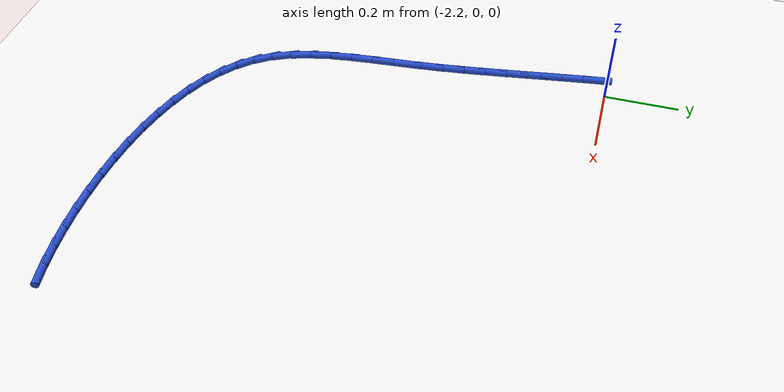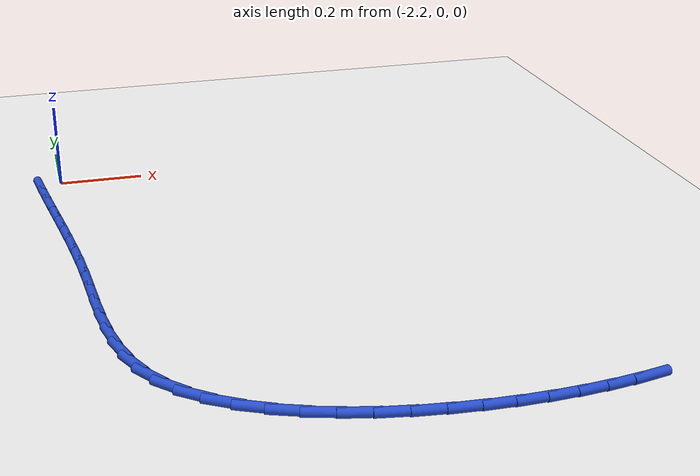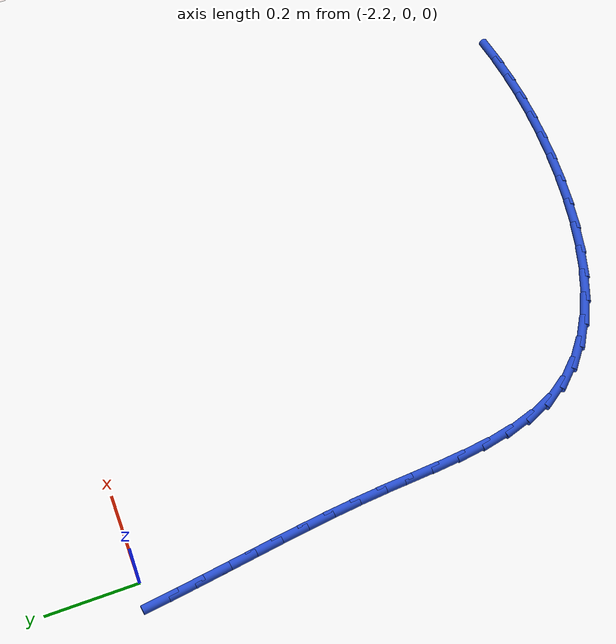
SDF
<sdf version="1.6">
 <world name="default">
  <model name="ground_plane">
   <static>1</static>
   <link name="link">
    <collision name="collision">
     <geometry><plane><normal>0 0 1</normal><size>100 100</size></plane></geometry>
     <surface><friction><ode><mu>100</mu><mu2>50</mu2></ode></friction></surface>
    </collision>
    <visual name="visual">
     <cast_shadows>0</cast_shadows>
     <geometry><plane><normal>0 0 1</normal><size>100 100</size></plane></geometry>
     <material>
      <script><uri>file://media/materials/scripts/gazebo.material</uri><name>Gazebo/WhiteGlow</name></script>
     </material>
    </visual>
   </link>
  </model>
  <model name="line">
   <link name="link_66">
    <pose>-2.2529558283108346 -0.02730755670367102 0.01 0 1.57 -1.4350065677008732</pose>
    <collision name="collision">
     <geometry><cylinder><radius>0.01</radius><length>0.08</length></cylinder></geometry>
    </collision>
    <visual name="visual">
     <material>
      <script><name>Gazebo/Blue</name><uri>file://media/materials/scripts/gazebo.material</uri></script>
     </material>
     <geometry><cylinder><radius>0.01</radius><length>0.08</length></cylinder></geometry>
    </visual>
   </link>
   <link name="link_67">
    <pose>-2.2451739255978733 -0.08426335414041222 0.01 0 1.57 -1.4263078063310326</pose>
    <collision name="collision">
     <geometry><cylinder><radius>0.01</radius><length>0.08</length></cylinder></geometry>
    </collision>
    <visual name="visual">
     <material>
      <script><name>Gazebo/Blue</name><uri>file://media/materials/scripts/gazebo.material</uri></script>
     </material>
     <geometry><cylinder><radius>0.01</radius><length>0.08</length></cylinder></geometry>
    </visual>
   </link>
   <link name="link_68">
    <pose>-2.236842569098327 -0.14152255989962514 0.01 0 1.57 -1.4219160475152388</pose>
    <collision name="collision">
     <geometry><cylinder><radius>0.01</radius><length>0.08</length></cylinder></geometry>
    </collision>
    <visual name="visual">
     <material>
      <script><name>Gazebo/Blue</name><uri>file://media/materials/scripts/gazebo.material</uri></script>
     </material>
     <geometry><cylinder><radius>0.01</radius><length>0.08</length></cylinder></geometry>
    </visual>
   </link>
   <link name="link_69">
    <pose>-2.2282006461971933 -0.19913917650316762 0.01 0 1.57 -1.4217480003017908</pose>
    <collision name="collision">
     <geometry><cylinder><radius>0.01</radius><length>0.08</length></cylinder></geometry>
    </collision>
    <visual name="visual">
     <material>
      <script><name>Gazebo/Blue</name><uri>file://media/materials/scripts/gazebo.material</uri></script>
     </material>
     <geometry><cylinder><radius>0.01</radius><length>0.08</length></cylinder></geometry>
    </visual>
   </link>
   <link name="link_70">
    <pose>-2.219487044279469 -0.2571672064728978 0.01 0 1.57 -1.4257143371498284</pose>
    <collision name="collision">
     <geometry><cylinder><radius>0.01</radius><length>0.08</length></cylinder></geometry>
    </collision>
    <visual name="visual">
     <material>
      <script><name>Gazebo/Blue</name><uri>file://media/materials/scripts/gazebo.material</uri></script>
     </material>
     <geometry><cylinder><radius>0.01</radius><length>0.08</length></cylinder></geometry>
    </visual>
   </link>
   <link name="link_71">
    <pose>-2.2109406507301532 -0.3156606523306711 0.01 0 1.57 -1.4337203017631497</pose>
    <collision name="collision">
     <geometry><cylinder><radius>0.01</radius><length>0.08</length></cylinder></geometry>
    </collision>
    <visual name="visual">
     <material>
      <script><name>Gazebo/Blue</name><uri>file://media/materials/scripts/gazebo.material</uri></script>
     </material>
     <geometry><cylinder><radius>0.01</radius><length>0.08</length></cylinder></geometry>
    </visual>
   </link>
   <link name="link_72">
    <pose>-2.202800352934241 -0.37467351659834514 0.01 0 1.57 -1.4456642914029794</pose>
    <collision name="collision">
     <geometry><cylinder><radius>0.01</radius><length>0.08</length></cylinder></geometry>
    </collision>
    <visual name="visual">
     <material>
      <script><name>Gazebo/Blue</name><uri>file://media/materials/scripts/gazebo.material</uri></script>
     </material>
     <geometry><cylinder><radius>0.01</radius><length>0.08</length></cylinder></geometry>
    </visual>
   </link>
   <link name="link_73">
    <pose>-2.195305038276731 -0.43425980179777723 0.01 0 1.57 -1.4614347590961219</pose>
    <collision name="collision">
     <geometry><cylinder><radius>0.01</radius><length>0.08</length></cylinder></geometry>
    </collision>
    <visual name="visual">
     <material>
      <script><name>Gazebo/Blue</name><uri>file://media/materials/scripts/gazebo.material</uri></script>
     </material>
     <geometry><cylinder><radius>0.01</radius><length>0.08</length></cylinder></geometry>
    </visual>
   </link>
   <link name="link_74">
    <pose>-2.188693594142621 -0.4944735104508247 0.01 0 1.57 -1.4808210773787303</pose>
    <collision name="collision">
     <geometry><cylinder><radius>0.01</radius><length>0.08</length></cylinder></geometry>
    </collision>
    <visual name="visual">
     <material>
      <script><name>Gazebo/Blue</name><uri>file://media/materials/scripts/gazebo.material</uri></script>
     </material>
     <geometry><cylinder><radius>0.01</radius><length>0.08</length></cylinder></geometry>
    </visual>
   </link>
   <link name="link_75">
    <pose>-2.183199968605627 -0.5553657328522883 0.01 0 1.57 -1.4957552193144383</pose>
    <collision name="collision">
     <geometry><cylinder><radius>0.01</radius><length>0.08</length></cylinder></geometry>
    </collision>
    <visual name="visual">
     <material>
      <script><name>Gazebo/Blue</name><uri>file://media/materials/scripts/gazebo.material</uri></script>
     </material>
     <geometry><cylinder><radius>0.01</radius><length>0.08</length></cylinder></geometry>
    </visual>
   </link>
   <link name="link_76">
    <pose>-2.178587940559726 -0.6167103466798715 0.01 0 1.57 -1.4920618894587494</pose>
    <collision name="collision">
     <geometry><cylinder><radius>0.01</radius><length>0.08</length></cylinder></geometry>
    </collision>
    <visual name="visual">
     <material>
      <script><name>Gazebo/Blue</name><uri>file://media/materials/scripts/gazebo.material</uri></script>
     </material>
     <geometry><cylinder><radius>0.01</radius><length>0.08</length></cylinder></geometry>
    </visual>
   </link>
   <link name="link_77">
    <pose>-2.1737697610735642 -0.6777791672321206 0.01 0 1.57 -1.4678185615603716</pose>
    <collision name="collision">
     <geometry><cylinder><radius>0.01</radius><length>0.08</length></cylinder></geometry>
    </collision>
    <visual name="visual">
     <material>
      <script><name>Gazebo/Blue</name><uri>file://media/materials/scripts/gazebo.material</uri></script>
     </material>
     <geometry><cylinder><radius>0.01</radius><length>0.08</length></cylinder></geometry>
    </visual>
   </link>
   <link name="link_78">
    <pose>-2.1675679293871593 -0.7377910919635897 0.01 0 1.57 -1.4212861624171125</pose>
    <collision name="collision">
     <geometry><cylinder><radius>0.01</radius><length>0.08</length></cylinder></geometry>
    </collision>
    <visual name="visual">
     <material>
      <script><name>Gazebo/Blue</name><uri>file://media/materials/scripts/gazebo.material</uri></script>
     </material>
     <geometry><cylinder><radius>0.01</radius><length>0.08</length></cylinder></geometry>
    </visual>
   </link>
   <link name="link_79">
    <pose>-2.1588049447405306 -0.7959650183288312 0.01 0 1.57 -1.3494510002429294</pose>
    <collision name="collision">
     <geometry><cylinder><radius>0.01</radius><length>0.08</length></cylinder></geometry>
    </collision>
    <visual name="visual">
     <material>
      <script><name>Gazebo/Blue</name><uri>file://media/materials/scripts/gazebo.material</uri></script>
     </material>
     <geometry><cylinder><radius>0.01</radius><length>0.08</length></cylinder></geometry>
    </visual>
   </link>
   <link name="link_80">
    <pose>-2.146303306373696 -0.8515198437823992 0.01 0 1.57 -1.2484778198340933</pose>
    <collision name="collision">
     <geometry><cylinder><radius>0.01</radius><length>0.08</length></cylinder></geometry>
    </collision>
    <visual name="visual">
     <material>
      <script><name>Gazebo/Blue</name><uri>file://media/materials/scripts/gazebo.material</uri></script>
     </material>
     <geometry><cylinder><radius>0.01</radius><length>0.08</length></cylinder></geometry>
    </visual>
   </link>
   <link name="link_81">
    <pose>-2.1288855135266744 -0.903674465778848 0.01 0 1.57 -1.1151046448103432</pose>
    <collision name="collision">
     <geometry><cylinder><radius>0.01</radius><length>0.08</length></cylinder></geometry>
    </collision>
    <visual name="visual">
     <material>
      <script><name>Gazebo/Blue</name><uri>file://media/materials/scripts/gazebo.material</uri></script>
     </material>
     <geometry><cylinder><radius>0.01</radius><length>0.08</length></cylinder></geometry>
    </visual>
   </link>
   <link name="link_82">
    <pose>-2.1053740654394826 -0.9516477817727308 0.01 0 1.57 -0.9525422410491188</pose>
    <collision name="collision">
     <geometry><cylinder><radius>0.01</radius><length>0.08</length></cylinder></geometry>
    </collision>
    <visual name="visual">
     <material>
      <script><name>Gazebo/Blue</name><uri>file://media/materials/scripts/gazebo.material</uri></script>
     </material>
     <geometry><cylinder><radius>0.01</radius><length>0.08</length></cylinder></geometry>
    </visual>
   </link>
   <link name="link_83">
    <pose>-2.074730791706826 -0.9947298632287753 0.01 0 1.57 -0.7923299637421823</pose>
    <collision name="collision">
     <geometry><cylinder><radius>0.01</radius><length>0.08</length></cylinder></geometry>
    </collision>
    <visual name="visual">
     <material>
      <script><name>Gazebo/Blue</name><uri>file://media/materials/scripts/gazebo.material</uri></script>
     </material>
     <geometry><cylinder><radius>0.01</radius><length>0.08</length></cylinder></geometry>
    </visual>
   </link>
   <link name="link_84">
    <pose>-2.0371466800855145 -1.0328386714619204 0.01 0 1.57 -0.6523744302894557</pose>
    <collision name="collision">
     <geometry><cylinder><radius>0.01</radius><length>0.08</length></cylinder></geometry>
    </collision>
    <visual name="visual">
     <material>
      <script><name>Gazebo/Blue</name><uri>file://media/materials/scripts/gazebo.material</uri></script>
     </material>
     <geometry><cylinder><radius>0.01</radius><length>0.08</length></cylinder></geometry>
    </visual>
   </link>
   <link name="link_85">
    <pose>-1.9934526530551597 -1.066219065113776 0.01 0 1.57 -0.5331676110837464</pose>
    <collision name="collision">
     <geometry><cylinder><radius>0.01</radius><length>0.08</length></cylinder></geometry>
    </collision>
    <visual name="visual">
     <material>
      <script><name>Gazebo/Blue</name><uri>file://media/materials/scripts/gazebo.material</uri></script>
     </material>
     <geometry><cylinder><radius>0.01</radius><length>0.08</length></cylinder></geometry>
    </visual>
   </link>
   <link name="link_86">
    <pose>-1.944485135827761 -1.0951187137822003 0.01 0 1.57 -0.43269030077204496</pose>
    <collision name="collision">
     <geometry><cylinder><radius>0.01</radius><length>0.08</length></cylinder></geometry>
    </collision>
    <visual name="visual">
     <material>
      <script><name>Gazebo/Blue</name><uri>file://media/materials/scripts/gazebo.material</uri></script>
     </material>
     <geometry><cylinder><radius>0.01</radius><length>0.08</length></cylinder></geometry>
    </visual>
   </link>
   <link name="link_87">
    <pose>-1.8910805536153215 -1.1197852870650506 0.01 0 1.57 -0.3480270493629902</pose>
    <collision name="collision">
     <geometry><cylinder><radius>0.01</radius><length>0.08</length></cylinder></geometry>
    </collision>
    <visual name="visual">
     <material>
      <script><name>Gazebo/Blue</name><uri>file://media/materials/scripts/gazebo.material</uri></script>
     </material>
     <geometry><cylinder><radius>0.01</radius><length>0.08</length></cylinder></geometry>
    </visual>
   </link>
   <link name="link_88">
    <pose>-1.8340753316298422 -1.140466454560185 0.01 0 1.57 -0.27623264905030015</pose>
    <collision name="collision">
     <geometry><cylinder><radius>0.01</radius><length>0.08</length></cylinder></geometry>
    </collision>
    <visual name="visual">
     <material>
      <script><name>Gazebo/Blue</name><uri>file://media/materials/scripts/gazebo.material</uri></script>
     </material>
     <geometry><cylinder><radius>0.01</radius><length>0.08</length></cylinder></geometry>
    </visual>
   </link>
   <link name="link_89">
    <pose>-1.7743058950833244 -1.157409885865462 0.01 0 1.57 -0.21469397219314396</pose>
    <collision name="collision">
     <geometry><cylinder><radius>0.01</radius><length>0.08</length></cylinder></geometry>
    </collision>
    <visual name="visual">
     <material>
      <script><name>Gazebo/Blue</name><uri>file://media/materials/scripts/gazebo.material</uri></script>
     </material>
     <geometry><cylinder><radius>0.01</radius><length>0.08</length></cylinder></geometry>
    </visual>
   </link>
   <link name="link_90">
    <pose>-1.712608669187769 -1.170863250578739 0.01 0 1.57 -0.1612132714427151</pose>
    <collision name="collision">
     <geometry><cylinder><radius>0.01</radius><length>0.08</length></cylinder></geometry>
    </collision>
    <visual name="visual">
     <material>
      <script><name>Gazebo/Blue</name><uri>file://media/materials/scripts/gazebo.material</uri></script>
     </material>
     <geometry><cylinder><radius>0.01</radius><length>0.08</length></cylinder></geometry>
    </visual>
   </link>
   <link name="link_91">
    <pose>-1.649820079155178 -1.1810742182978755 0.01 0 1.57 -0.113968395037657</pose>
    <collision name="collision">
     <geometry><cylinder><radius>0.01</radius><length>0.08</length></cylinder></geometry>
    </collision>
    <visual name="visual">
     <material>
      <script><name>Gazebo/Blue</name><uri>file://media/materials/scripts/gazebo.material</uri></script>
     </material>
     <geometry><cylinder><radius>0.01</radius><length>0.08</length></cylinder></geometry>
    </visual>
   </link>
   <link name="link_92">
    <pose>-1.586776550197553 -1.1882904586207275 0.01 0 1.57 -0.07142864818784289</pose>
    <collision name="collision">
     <geometry><cylinder><radius>0.01</radius><length>0.08</length></cylinder></geometry>
    </collision>
    <visual name="visual">
     <material>
      <script><name>Gazebo/Blue</name><uri>file://media/materials/scripts/gazebo.material</uri></script>
     </material>
     <geometry><cylinder><radius>0.01</radius><length>0.08</length></cylinder></geometry>
    </visual>
   </link>
   <link name="link_93">
    <pose>-1.5243145075268958 -1.1927596411451546 0.01 0 1.57 -0.031788650947794456</pose>
    <collision name="collision">
     <geometry><cylinder><radius>0.01</radius><length>0.08</length></cylinder></geometry>
    </collision>
    <visual name="visual">
     <material>
      <script><name>Gazebo/Blue</name><uri>file://media/materials/scripts/gazebo.material</uri></script>
     </material>
     <geometry><cylinder><radius>0.01</radius><length>0.08</length></cylinder></geometry>
    </visual>
   </link>
   <link name="link_94">
    <pose>-1.4631420614756527 -1.1947048859596263 0.01 0 1.57 0.008011035285031708</pose>
    <collision name="collision">
     <geometry><cylinder><radius>0.01</radius><length>0.08</length></cylinder></geometry>
    </collision>
    <visual name="visual">
     <material>
      <script><name>Gazebo/Blue</name><uri>file://media/materials/scripts/gazebo.material</uri></script>
     </material>
     <geometry><cylinder><radius>0.01</radius><length>0.08</length></cylinder></geometry>
    </visual>
   </link>
   <link name="link_95">
    <pose>-1.4033209446964607 -1.194225646630277 0.01 0 1.57 0.048470255303936005</pose>
    <collision name="collision">
     <geometry><cylinder><radius>0.01</radius><length>0.08</length></cylinder></geometry>
    </collision>
    <visual name="visual">
     <material>
      <script><name>Gazebo/Blue</name><uri>file://media/materials/scripts/gazebo.material</uri></script>
     </material>
     <geometry><cylinder><radius>0.01</radius><length>0.08</length></cylinder></geometry>
    </visual>
   </link>
   <link name="link_96">
    <pose>-1.3447098107299942 -1.1913825231422452 0.01 0 1.57 0.08919944170698574</pose>
    <collision name="collision">
     <geometry><cylinder><radius>0.01</radius><length>0.08</length></cylinder></geometry>
    </collision>
    <visual name="visual">
     <material>
      <script><name>Gazebo/Blue</name><uri>file://media/materials/scripts/gazebo.material</uri></script>
     </material>
     <geometry><cylinder><radius>0.01</radius><length>0.08</length></cylinder></geometry>
    </visual>
   </link>
   <link name="link_97">
    <pose>-1.2871672398443186 -1.1862361014619809 0.01 0 1.57 0.1297809147786022</pose>
    <collision name="collision">
     <geometry><cylinder><radius>0.01</radius><length>0.08</length></cylinder></geometry>
    </collision>
    <visual name="visual">
     <material>
      <script><name>Gazebo/Blue</name><uri>file://media/materials/scripts/gazebo.material</uri></script>
     </material>
     <geometry><cylinder><radius>0.01</radius><length>0.08</length></cylinder></geometry>
    </visual>
   </link>
   <link name="link_98">
    <pose>-1.230551812307497 -1.1788469675559314 0.01 0 1.57 0.16978616983117698</pose>
    <collision name="collision">
     <geometry><cylinder><radius>0.01</radius><length>0.08</length></cylinder></geometry>
    </collision>
    <visual name="visual">
     <material>
      <script><name>Gazebo/Blue</name><uri>file://media/materials/scripts/gazebo.material</uri></script>
     </material>
     <geometry><cylinder><radius>0.01</radius><length>0.08</length></cylinder></geometry>
    </visual>
   </link>
  </model>
 </world>
</sdf>
